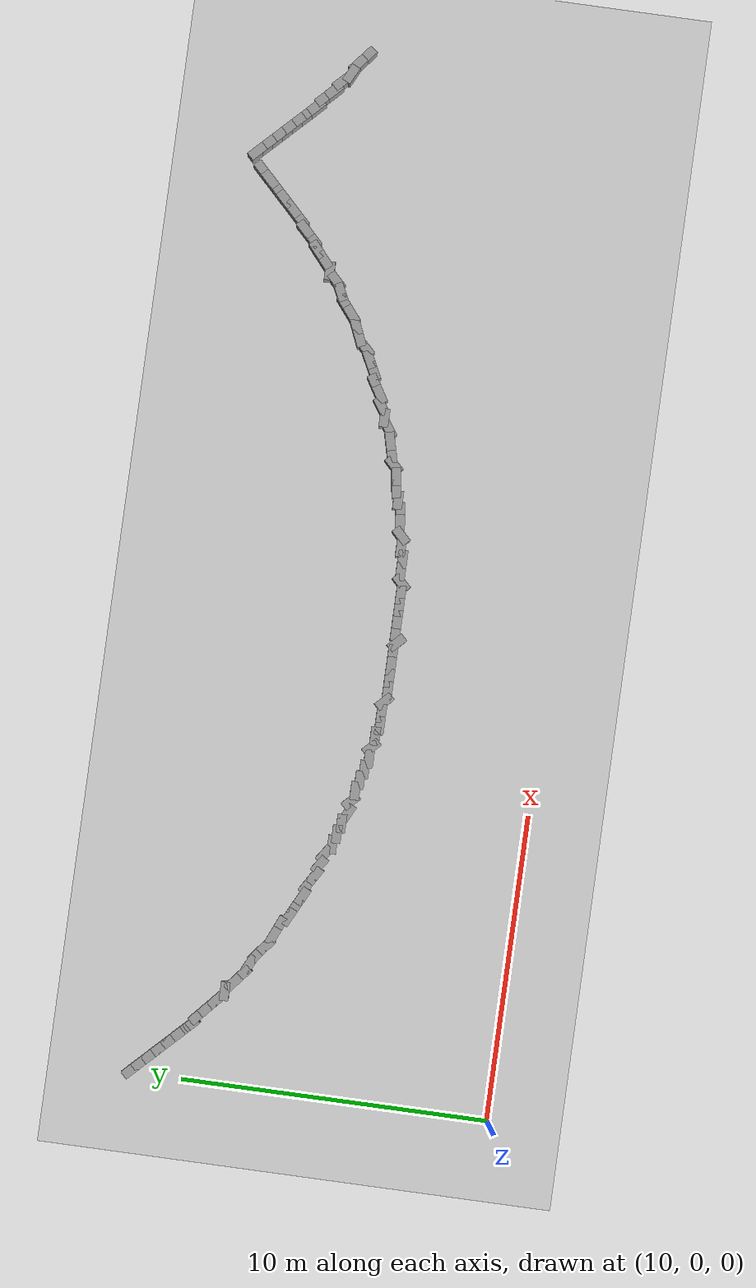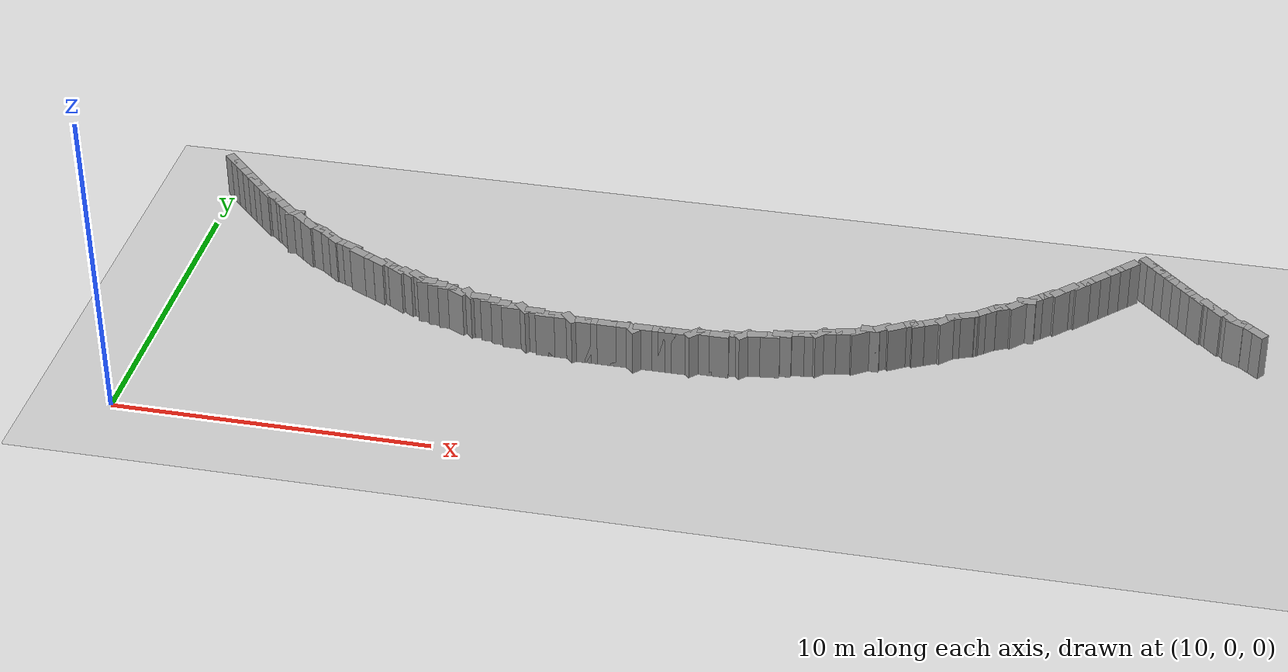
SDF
<sdf version="1.5">
 <world name="test_figure8">
  <include><uri>model://sun</uri></include>
  <include><uri>model://ground_plane</uri></include>
  <model name="curbL_49">
   <static>true</static>
   <pose>10.150 11.650 0.750 0 0 -0.785</pose>
   <link name="link">
    <collision name="collision"><geometry><box><size>0.600 0.300 1.500</size></box></geometry></collision>
    <visual name="visual">
     <geometry><box><size>0.600 0.300 1.500</size></box></geometry>
     <material><ambient>0.6 0.6 0.6 1</ambient><diffuse>0.6 0.6 0.6 1</diffuse></material>
    </visual>
   </link>
  </model>
  <model name="curbL_50">
   <static>true</static>
   <pose>10.433 11.367 0.750 0 0 -0.785</pose>
   <link name="link">
    <collision name="collision"><geometry><box><size>0.600 0.300 1.500</size></box></geometry></collision>
    <visual name="visual">
     <geometry><box><size>0.600 0.300 1.500</size></box></geometry>
     <material><ambient>0.6 0.6 0.6 1</ambient><diffuse>0.6 0.6 0.6 1</diffuse></material>
    </visual>
   </link>
  </model>
  <model name="curbL_51">
   <static>true</static>
   <pose>10.716 11.084 0.750 0 0 -0.785</pose>
   <link name="link">
    <collision name="collision"><geometry><box><size>0.600 0.300 1.500</size></box></geometry></collision>
    <visual name="visual">
     <geometry><box><size>0.600 0.300 1.500</size></box></geometry>
     <material><ambient>0.6 0.6 0.6 1</ambient><diffuse>0.6 0.6 0.6 1</diffuse></material>
    </visual>
   </link>
  </model>
  <model name="curbL_52">
   <static>true</static>
   <pose>10.999 10.801 0.750 0 0 -0.785</pose>
   <link name="link">
    <collision name="collision"><geometry><box><size>0.600 0.300 1.500</size></box></geometry></collision>
    <visual name="visual">
     <geometry><box><size>0.600 0.300 1.500</size></box></geometry>
     <material><ambient>0.6 0.6 0.6 1</ambient><diffuse>0.6 0.6 0.6 1</diffuse></material>
    </visual>
   </link>
  </model>
  <model name="curbL_53">
   <static>true</static>
   <pose>11.282 10.518 0.750 0 0 -0.785</pose>
   <link name="link">
    <collision name="collision"><geometry><box><size>0.600 0.300 1.500</size></box></geometry></collision>
    <visual name="visual">
     <geometry><box><size>0.600 0.300 1.500</size></box></geometry>
     <material><ambient>0.6 0.6 0.6 1</ambient><diffuse>0.6 0.6 0.6 1</diffuse></material>
    </visual>
   </link>
  </model>
  <model name="curbL_54">
   <static>true</static>
   <pose>11.564 10.236 0.750 0 0 -0.785</pose>
   <link name="link">
    <collision name="collision"><geometry><box><size>0.600 0.300 1.500</size></box></geometry></collision>
    <visual name="visual">
     <geometry><box><size>0.600 0.300 1.500</size></box></geometry>
     <material><ambient>0.6 0.6 0.6 1</ambient><diffuse>0.6 0.6 0.6 1</diffuse></material>
    </visual>
   </link>
  </model>
  <model name="curbL_55">
   <static>true</static>
   <pose>11.847 9.953 0.750 0 0 -0.785</pose>
   <link name="link">
    <collision name="collision"><geometry><box><size>0.600 0.300 1.500</size></box></geometry></collision>
    <visual name="visual">
     <geometry><box><size>0.600 0.300 1.500</size></box></geometry>
     <material><ambient>0.6 0.6 0.6 1</ambient><diffuse>0.6 0.6 0.6 1</diffuse></material>
    </visual>
   </link>
  </model>
  <model name="curbL_56">
   <static>true</static>
   <pose>12.168 9.749 0.750 0 0 -0.733</pose>
   <link name="link">
    <collision name="collision"><geometry><box><size>0.600 0.300 1.500</size></box></geometry></collision>
    <visual name="visual">
     <geometry><box><size>0.600 0.300 1.500</size></box></geometry>
     <material><ambient>0.6 0.6 0.6 1</ambient><diffuse>0.6 0.6 0.6 1</diffuse></material>
    </visual>
   </link>
  </model>
  <model name="curbL_57">
   <static>true</static>
   <pose>12.465 9.482 0.750 0 0 -0.733</pose>
   <link name="link">
    <collision name="collision"><geometry><box><size>0.600 0.300 1.500</size></box></geometry></collision>
    <visual name="visual">
     <geometry><box><size>0.600 0.300 1.500</size></box></geometry>
     <material><ambient>0.6 0.6 0.6 1</ambient><diffuse>0.6 0.6 0.6 1</diffuse></material>
    </visual>
   </link>
  </model>
  <model name="curbL_58">
   <static>true</static>
   <pose>12.762 9.214 0.750 0 0 -0.733</pose>
   <link name="link">
    <collision name="collision"><geometry><box><size>0.600 0.300 1.500</size></box></geometry></collision>
    <visual name="visual">
     <geometry><box><size>0.600 0.300 1.500</size></box></geometry>
     <material><ambient>0.6 0.6 0.6 1</ambient><diffuse>0.6 0.6 0.6 1</diffuse></material>
    </visual>
   </link>
  </model>
  <model name="curbL_59">
   <static>true</static>
   <pose>13.080 9.000 0.750 0 0 0.000</pose>
   <link name="link">
    <collision name="collision"><geometry><box><size>0.600 0.300 1.500</size></box></geometry></collision>
    <visual name="visual">
     <geometry><box><size>0.600 0.300 1.500</size></box></geometry>
     <material><ambient>0.6 0.6 0.6 1</ambient><diffuse>0.6 0.6 0.6 1</diffuse></material>
    </visual>
   </link>
  </model>
  <model name="curbL_60">
   <static>true</static>
   <pose>13.392 8.757 0.750 0 0 -0.695</pose>
   <link name="link">
    <collision name="collision"><geometry><box><size>0.600 0.300 1.500</size></box></geometry></collision>
    <visual name="visual">
     <geometry><box><size>0.600 0.300 1.500</size></box></geometry>
     <material><ambient>0.6 0.6 0.6 1</ambient><diffuse>0.6 0.6 0.6 1</diffuse></material>
    </visual>
   </link>
  </model>
  <model name="curbL_61">
   <static>true</static>
   <pose>13.699 8.501 0.750 0 0 -0.695</pose>
   <link name="link">
    <collision name="collision"><geometry><box><size>0.600 0.300 1.500</size></box></geometry></collision>
    <visual name="visual">
     <geometry><box><size>0.600 0.300 1.500</size></box></geometry>
     <material><ambient>0.6 0.6 0.6 1</ambient><diffuse>0.6 0.6 0.6 1</diffuse></material>
    </visual>
   </link>
  </model>
  <model name="curbL_62">
   <static>true</static>
   <pose>14.057 8.322 0.750 0 0 -0.464</pose>
   <link name="link">
    <collision name="collision"><geometry><box><size>0.600 0.300 1.500</size></box></geometry></collision>
    <visual name="visual">
     <geometry><box><size>0.600 0.300 1.500</size></box></geometry>
     <material><ambient>0.6 0.6 0.6 1</ambient><diffuse>0.6 0.6 0.6 1</diffuse></material>
    </visual>
   </link>
  </model>
  <model name="curbL_63">
   <static>true</static>
   <pose>14.400 8.120 0.750 0 0 -0.675</pose>
   <link name="link">
    <collision name="collision"><geometry><box><size>0.600 0.300 1.500</size></box></geometry></collision>
    <visual name="visual">
     <geometry><box><size>0.600 0.300 1.500</size></box></geometry>
     <material><ambient>0.6 0.6 0.6 1</ambient><diffuse>0.6 0.6 0.6 1</diffuse></material>
    </visual>
   </link>
  </model>
  <model name="curbL_64">
   <static>true</static>
   <pose>14.713 7.870 0.750 0 0 -0.675</pose>
   <link name="link">
    <collision name="collision"><geometry><box><size>0.600 0.300 1.500</size></box></geometry></collision>
    <visual name="visual">
     <geometry><box><size>0.600 0.300 1.500</size></box></geometry>
     <material><ambient>0.6 0.6 0.6 1</ambient><diffuse>0.6 0.6 0.6 1</diffuse></material>
    </visual>
   </link>
  </model>
  <model name="curbL_65">
   <static>true</static>
   <pose>15.065 7.687 0.750 0 0 -0.405</pose>
   <link name="link">
    <collision name="collision"><geometry><box><size>0.600 0.300 1.500</size></box></geometry></collision>
    <visual name="visual">
     <geometry><box><size>0.600 0.300 1.500</size></box></geometry>
     <material><ambient>0.6 0.6 0.6 1</ambient><diffuse>0.6 0.6 0.6 1</diffuse></material>
    </visual>
   </link>
  </model>
  <model name="curbL_66">
   <static>true</static>
   <pose>15.432 7.529 0.750 0 0 -0.405</pose>
   <link name="link">
    <collision name="collision"><geometry><box><size>0.600 0.300 1.500</size></box></geometry></collision>
    <visual name="visual">
     <geometry><box><size>0.600 0.300 1.500</size></box></geometry>
     <material><ambient>0.6 0.6 0.6 1</ambient><diffuse>0.6 0.6 0.6 1</diffuse></material>
    </visual>
   </link>
  </model>
  <model name="curbL_67">
   <static>true</static>
   <pose>15.739 7.281 0.750 0 0 -0.464</pose>
   <link name="link">
    <collision name="collision"><geometry><box><size>0.600 0.300 1.500</size></box></geometry></collision>
    <visual name="visual">
     <geometry><box><size>0.600 0.300 1.500</size></box></geometry>
     <material><ambient>0.6 0.6 0.6 1</ambient><diffuse>0.6 0.6 0.6 1</diffuse></material>
    </visual>
   </link>
  </model>
  <model name="curbL_68">
   <static>true</static>
   <pose>16.097 7.102 0.750 0 0 -0.464</pose>
   <link name="link">
    <collision name="collision"><geometry><box><size>0.600 0.300 1.500</size></box></geometry></collision>
    <visual name="visual">
     <geometry><box><size>0.600 0.300 1.500</size></box></geometry>
     <material><ambient>0.6 0.6 0.6 1</ambient><diffuse>0.6 0.6 0.6 1</diffuse></material>
    </visual>
   </link>
  </model>
  <model name="curbL_69">
   <static>true</static>
   <pose>16.455 6.923 0.750 0 0 -0.464</pose>
   <link name="link">
    <collision name="collision"><geometry><box><size>0.600 0.300 1.500</size></box></geometry></collision>
    <visual name="visual">
     <geometry><box><size>0.600 0.300 1.500</size></box></geometry>
     <material><ambient>0.6 0.6 0.6 1</ambient><diffuse>0.6 0.6 0.6 1</diffuse></material>
    </visual>
   </link>
  </model>
  <model name="curbL_70">
   <static>true</static>
   <pose>16.828 6.823 0.750 0 0 -0.540</pose>
   <link name="link">
    <collision name="collision"><geometry><box><size>0.600 0.300 1.500</size></box></geometry></collision>
    <visual name="visual">
     <geometry><box><size>0.600 0.300 1.500</size></box></geometry>
     <material><ambient>0.6 0.6 0.6 1</ambient><diffuse>0.6 0.6 0.6 1</diffuse></material>
    </visual>
   </link>
  </model>
  <model name="curbL_71">
   <static>true</static>
   <pose>17.171 6.617 0.750 0 0 -0.540</pose>
   <link name="link">
    <collision name="collision"><geometry><box><size>0.600 0.300 1.500</size></box></geometry></collision>
    <visual name="visual">
     <geometry><box><size>0.600 0.300 1.500</size></box></geometry>
     <material><ambient>0.6 0.6 0.6 1</ambient><diffuse>0.6 0.6 0.6 1</diffuse></material>
    </visual>
   </link>
  </model>
  <model name="curbL_72">
   <static>true</static>
   <pose>17.538 6.508 0.750 0 0 -0.588</pose>
   <link name="link">
    <collision name="collision"><geometry><box><size>0.600 0.300 1.500</size></box></geometry></collision>
    <visual name="visual">
     <geometry><box><size>0.600 0.300 1.500</size></box></geometry>
     <material><ambient>0.6 0.6 0.6 1</ambient><diffuse>0.6 0.6 0.6 1</diffuse></material>
    </visual>
   </link>
  </model>
  <model name="curbL_73">
   <static>true</static>
   <pose>17.905 6.397 0.750 0 0 -0.588</pose>
   <link name="link">
    <collision name="collision"><geometry><box><size>0.600 0.300 1.500</size></box></geometry></collision>
    <visual name="visual">
     <geometry><box><size>0.600 0.300 1.500</size></box></geometry>
     <material><ambient>0.6 0.6 0.6 1</ambient><diffuse>0.6 0.6 0.6 1</diffuse></material>
    </visual>
   </link>
  </model>
  <model name="curbL_74">
   <static>true</static>
   <pose>18.245 6.200 0.750 0 0 0.000</pose>
   <link name="link">
    <collision name="collision"><geometry><box><size>0.600 0.300 1.500</size></box></geometry></collision>
    <visual name="visual">
     <geometry><box><size>0.600 0.300 1.500</size></box></geometry>
     <material><ambient>0.6 0.6 0.6 1</ambient><diffuse>0.6 0.6 0.6 1</diffuse></material>
    </visual>
   </link>
  </model>
  <model name="curbL_75">
   <static>true</static>
   <pose>18.604 6.100 0.750 0 0 0.000</pose>
   <link name="link">
    <collision name="collision"><geometry><box><size>0.600 0.300 1.500</size></box></geometry></collision>
    <visual name="visual">
     <geometry><box><size>0.600 0.300 1.500</size></box></geometry>
     <material><ambient>0.6 0.6 0.6 1</ambient><diffuse>0.6 0.6 0.6 1</diffuse></material>
    </visual>
   </link>
  </model>
  <model name="curbL_76">
   <static>true</static>
   <pose>18.962 6.000 0.750 0 0 0.000</pose>
   <link name="link">
    <collision name="collision"><geometry><box><size>0.600 0.300 1.500</size></box></geometry></collision>
    <visual name="visual">
     <geometry><box><size>0.600 0.300 1.500</size></box></geometry>
     <material><ambient>0.6 0.6 0.6 1</ambient><diffuse>0.6 0.6 0.6 1</diffuse></material>
    </visual>
   </link>
  </model>
  <model name="curbL_77">
   <static>true</static>
   <pose>19.324 5.838 0.750 0 0 -0.464</pose>
   <link name="link">
    <collision name="collision"><geometry><box><size>0.600 0.300 1.500</size></box></geometry></collision>
    <visual name="visual">
     <geometry><box><size>0.600 0.300 1.500</size></box></geometry>
     <material><ambient>0.6 0.6 0.6 1</ambient><diffuse>0.6 0.6 0.6 1</diffuse></material>
    </visual>
   </link>
  </model>
  <model name="curbL_78">
   <static>true</static>
   <pose>19.711 5.789 0.750 0 0 -0.785</pose>
   <link name="link">
    <collision name="collision"><geometry><box><size>0.600 0.300 1.500</size></box></geometry></collision>
    <visual name="visual">
     <geometry><box><size>0.600 0.300 1.500</size></box></geometry>
     <material><ambient>0.6 0.6 0.6 1</ambient><diffuse>0.6 0.6 0.6 1</diffuse></material>
    </visual>
   </link>
  </model>
  <model name="curbL_79">
   <static>true</static>
   <pose>20.073 5.700 0.750 0 0 0.000</pose>
   <link name="link">
    <collision name="collision"><geometry><box><size>0.600 0.300 1.500</size></box></geometry></collision>
    <visual name="visual">
     <geometry><box><size>0.600 0.300 1.500</size></box></geometry>
     <material><ambient>0.6 0.6 0.6 1</ambient><diffuse>0.6 0.6 0.6 1</diffuse></material>
    </visual>
   </link>
  </model>
  <model name="curbL_80">
   <static>true</static>
   <pose>20.432 5.600 0.750 0 0 0.000</pose>
   <link name="link">
    <collision name="collision"><geometry><box><size>0.600 0.300 1.500</size></box></geometry></collision>
    <visual name="visual">
     <geometry><box><size>0.600 0.300 1.500</size></box></geometry>
     <material><ambient>0.6 0.6 0.6 1</ambient><diffuse>0.6 0.6 0.6 1</diffuse></material>
    </visual>
   </link>
  </model>
  <model name="curbL_81">
   <static>true</static>
   <pose>20.791 5.500 0.750 0 0 0.000</pose>
   <link name="link">
    <collision name="collision"><geometry><box><size>0.600 0.300 1.500</size></box></geometry></collision>
    <visual name="visual">
     <geometry><box><size>0.600 0.300 1.500</size></box></geometry>
     <material><ambient>0.6 0.6 0.6 1</ambient><diffuse>0.6 0.6 0.6 1</diffuse></material>
    </visual>
   </link>
  </model>
  <model name="curbL_82">
   <static>true</static>
   <pose>21.149 5.400 0.750 0 0 0.000</pose>
   <link name="link">
    <collision name="collision"><geometry><box><size>0.600 0.300 1.500</size></box></geometry></collision>
    <visual name="visual">
     <geometry><box><size>0.600 0.300 1.500</size></box></geometry>
     <material><ambient>0.6 0.6 0.6 1</ambient><diffuse>0.6 0.6 0.6 1</diffuse></material>
    </visual>
   </link>
  </model>
  <model name="curbL_83">
   <static>true</static>
   <pose>21.535 5.365 0.750 0 0 -0.785</pose>
   <link name="link">
    <collision name="collision"><geometry><box><size>0.600 0.300 1.500</size></box></geometry></collision>
    <visual name="visual">
     <geometry><box><size>0.600 0.300 1.500</size></box></geometry>
     <material><ambient>0.6 0.6 0.6 1</ambient><diffuse>0.6 0.6 0.6 1</diffuse></material>
    </visual>
   </link>
  </model>
  <model name="curbL_84">
   <static>true</static>
   <pose>21.908 5.300 0.750 0 0 0.000</pose>
   <link name="link">
    <collision name="collision"><geometry><box><size>0.600 0.300 1.500</size></box></geometry></collision>
    <visual name="visual">
     <geometry><box><size>0.600 0.300 1.500</size></box></geometry>
     <material><ambient>0.6 0.6 0.6 1</ambient><diffuse>0.6 0.6 0.6 1</diffuse></material>
    </visual>
   </link>
  </model>
  <model name="curbL_85">
   <static>true</static>
   <pose>22.266 5.200 0.750 0 0 0.000</pose>
   <link name="link">
    <collision name="collision"><geometry><box><size>0.600 0.300 1.500</size></box></geometry></collision>
    <visual name="visual">
     <geometry><box><size>0.600 0.300 1.500</size></box></geometry>
     <material><ambient>0.6 0.6 0.6 1</ambient><diffuse>0.6 0.6 0.6 1</diffuse></material>
    </visual>
   </link>
  </model>
  <model name="curbL_86">
   <static>true</static>
   <pose>22.666 5.200 0.750 0 0 0.000</pose>
   <link name="link">
    <collision name="collision"><geometry><box><size>0.600 0.300 1.500</size></box></geometry></collision>
    <visual name="visual">
     <geometry><box><size>0.600 0.300 1.500</size></box></geometry>
     <material><ambient>0.6 0.6 0.6 1</ambient><diffuse>0.6 0.6 0.6 1</diffuse></material>
    </visual>
   </link>
  </model>
  <model name="curbL_87">
   <static>true</static>
   <pose>23.047 5.153 0.750 0 0 -0.785</pose>
   <link name="link">
    <collision name="collision"><geometry><box><size>0.600 0.300 1.500</size></box></geometry></collision>
    <visual name="visual">
     <geometry><box><size>0.600 0.300 1.500</size></box></geometry>
     <material><ambient>0.6 0.6 0.6 1</ambient><diffuse>0.6 0.6 0.6 1</diffuse></material>
    </visual>
   </link>
  </model>
  <model name="curbL_88">
   <static>true</static>
   <pose>23.425 5.100 0.750 0 0 0.000</pose>
   <link name="link">
    <collision name="collision"><geometry><box><size>0.600 0.300 1.500</size></box></geometry></collision>
    <visual name="visual">
     <geometry><box><size>0.600 0.300 1.500</size></box></geometry>
     <material><ambient>0.6 0.6 0.6 1</ambient><diffuse>0.6 0.6 0.6 1</diffuse></material>
    </visual>
   </link>
  </model>
  <model name="curbL_89">
   <static>true</static>
   <pose>23.825 5.100 0.750 0 0 0.000</pose>
   <link name="link">
    <collision name="collision"><geometry><box><size>0.600 0.300 1.500</size></box></geometry></collision>
    <visual name="visual">
     <geometry><box><size>0.600 0.300 1.500</size></box></geometry>
     <material><ambient>0.6 0.6 0.6 1</ambient><diffuse>0.6 0.6 0.6 1</diffuse></material>
    </visual>
   </link>
  </model>
  <model name="curbL_90">
   <static>true</static>
   <pose>24.225 5.100 0.750 0 0 0.000</pose>
   <link name="link">
    <collision name="collision"><geometry><box><size>0.600 0.300 1.500</size></box></geometry></collision>
    <visual name="visual">
     <geometry><box><size>0.600 0.300 1.500</size></box></geometry>
     <material><ambient>0.6 0.6 0.6 1</ambient><diffuse>0.6 0.6 0.6 1</diffuse></material>
    </visual>
   </link>
  </model>
  <model name="curbL_91">
   <static>true</static>
   <pose>24.625 5.100 0.750 0 0 0.000</pose>
   <link name="link">
    <collision name="collision"><geometry><box><size>0.600 0.300 1.500</size></box></geometry></collision>
    <visual name="visual">
     <geometry><box><size>0.600 0.300 1.500</size></box></geometry>
     <material><ambient>0.6 0.6 0.6 1</ambient><diffuse>0.6 0.6 0.6 1</diffuse></material>
    </visual>
   </link>
  </model>
  <model name="curbL_92">
   <static>true</static>
   <pose>24.988 5.012 0.750 0 0 -0.785</pose>
   <link name="link">
    <collision name="collision"><geometry><box><size>0.600 0.300 1.500</size></box></geometry></collision>
    <visual name="visual">
     <geometry><box><size>0.600 0.300 1.500</size></box></geometry>
     <material><ambient>0.6 0.6 0.6 1</ambient><diffuse>0.6 0.6 0.6 1</diffuse></material>
    </visual>
   </link>
  </model>
  <model name="curbL_93">
   <static>true</static>
   <pose>25.342 5.100 0.750 0 0 0.000</pose>
   <link name="link">
    <collision name="collision"><geometry><box><size>0.600 0.300 1.500</size></box></geometry></collision>
    <visual name="visual">
     <geometry><box><size>0.600 0.300 1.500</size></box></geometry>
     <material><ambient>0.6 0.6 0.6 1</ambient><diffuse>0.6 0.6 0.6 1</diffuse></material>
    </visual>
   </link>
  </model>
  <model name="curbL_94">
   <static>true</static>
   <pose>25.742 5.100 0.750 0 0 0.000</pose>
   <link name="link">
    <collision name="collision"><geometry><box><size>0.600 0.300 1.500</size></box></geometry></collision>
    <visual name="visual">
     <geometry><box><size>0.600 0.300 1.500</size></box></geometry>
     <material><ambient>0.6 0.6 0.6 1</ambient><diffuse>0.6 0.6 0.6 1</diffuse></material>
    </visual>
   </link>
  </model>
  <model name="curbL_95">
   <static>true</static>
   <pose>26.142 5.100 0.750 0 0 0.000</pose>
   <link name="link">
    <collision name="collision"><geometry><box><size>0.600 0.300 1.500</size></box></geometry></collision>
    <visual name="visual">
     <geometry><box><size>0.600 0.300 1.500</size></box></geometry>
     <material><ambient>0.6 0.6 0.6 1</ambient><diffuse>0.6 0.6 0.6 1</diffuse></material>
    </visual>
   </link>
  </model>
  <model name="curbL_96">
   <static>true</static>
   <pose>26.542 5.100 0.750 0 0 0.000</pose>
   <link name="link">
    <collision name="collision"><geometry><box><size>0.600 0.300 1.500</size></box></geometry></collision>
    <visual name="visual">
     <geometry><box><size>0.600 0.300 1.500</size></box></geometry>
     <material><ambient>0.6 0.6 0.6 1</ambient><diffuse>0.6 0.6 0.6 1</diffuse></material>
    </visual>
   </link>
  </model>
  <model name="curbL_97">
   <static>true</static>
   <pose>26.930 5.130 0.750 0 0 0.785</pose>
   <link name="link">
    <collision name="collision"><geometry><box><size>0.600 0.300 1.500</size></box></geometry></collision>
    <visual name="visual">
     <geometry><box><size>0.600 0.300 1.500</size></box></geometry>
     <material><ambient>0.6 0.6 0.6 1</ambient><diffuse>0.6 0.6 0.6 1</diffuse></material>
    </visual>
   </link>
  </model>
  <model name="curbL_98">
   <static>true</static>
   <pose>27.301 5.200 0.750 0 0 0.000</pose>
   <link name="link">
    <collision name="collision"><geometry><box><size>0.600 0.300 1.500</size></box></geometry></collision>
    <visual name="visual">
     <geometry><box><size>0.600 0.300 1.500</size></box></geometry>
     <material><ambient>0.6 0.6 0.6 1</ambient><diffuse>0.6 0.6 0.6 1</diffuse></material>
    </visual>
   </link>
  </model>
  <model name="curbL_99">
   <static>true</static>
   <pose>27.701 5.200 0.750 0 0 0.000</pose>
   <link name="link">
    <collision name="collision"><geometry><box><size>0.600 0.300 1.500</size></box></geometry></collision>
    <visual name="visual">
     <geometry><box><size>0.600 0.300 1.500</size></box></geometry>
     <material><ambient>0.6 0.6 0.6 1</ambient><diffuse>0.6 0.6 0.6 1</diffuse></material>
    </visual>
   </link>
  </model>
  <model name="curbL_100">
   <static>true</static>
   <pose>28.059 5.300 0.750 0 0 0.000</pose>
   <link name="link">
    <collision name="collision"><geometry><box><size>0.600 0.300 1.500</size></box></geometry></collision>
    <visual name="visual">
     <geometry><box><size>0.600 0.300 1.500</size></box></geometry>
     <material><ambient>0.6 0.6 0.6 1</ambient><diffuse>0.6 0.6 0.6 1</diffuse></material>
    </visual>
   </link>
  </model>
  <model name="curbL_101">
   <static>true</static>
   <pose>28.442 5.342 0.750 0 0 0.785</pose>
   <link name="link">
    <collision name="collision"><geometry><box><size>0.600 0.300 1.500</size></box></geometry></collision>
    <visual name="visual">
     <geometry><box><size>0.600 0.300 1.500</size></box></geometry>
     <material><ambient>0.6 0.6 0.6 1</ambient><diffuse>0.6 0.6 0.6 1</diffuse></material>
    </visual>
   </link>
  </model>
  <model name="curbL_102">
   <static>true</static>
   <pose>28.816 5.435 0.750 0 0 0.111</pose>
   <link name="link">
    <collision name="collision"><geometry><box><size>0.600 0.300 1.500</size></box></geometry></collision>
    <visual name="visual">
     <geometry><box><size>0.600 0.300 1.500</size></box></geometry>
     <material><ambient>0.6 0.6 0.6 1</ambient><diffuse>0.6 0.6 0.6 1</diffuse></material>
    </visual>
   </link>
  </model>
  <model name="curbL_103">
   <static>true</static>
   <pose>29.213 5.479 0.750 0 0 0.111</pose>
   <link name="link">
    <collision name="collision"><geometry><box><size>0.600 0.300 1.500</size></box></geometry></collision>
    <visual name="visual">
     <geometry><box><size>0.600 0.300 1.500</size></box></geometry>
     <material><ambient>0.6 0.6 0.6 1</ambient><diffuse>0.6 0.6 0.6 1</diffuse></material>
    </visual>
   </link>
  </model>
  <model name="curbL_104">
   <static>true</static>
   <pose>29.571 5.600 0.750 0 0 0.000</pose>
   <link name="link">
    <collision name="collision"><geometry><box><size>0.600 0.300 1.500</size></box></geometry></collision>
    <visual name="visual">
     <geometry><box><size>0.600 0.300 1.500</size></box></geometry>
     <material><ambient>0.6 0.6 0.6 1</ambient><diffuse>0.6 0.6 0.6 1</diffuse></material>
    </visual>
   </link>
  </model>
  <model name="curbL_105">
   <static>true</static>
   <pose>29.929 5.704 0.750 0 0 0.142</pose>
   <link name="link">
    <collision name="collision"><geometry><box><size>0.600 0.300 1.500</size></box></geometry></collision>
    <visual name="visual">
     <geometry><box><size>0.600 0.300 1.500</size></box></geometry>
     <material><ambient>0.6 0.6 0.6 1</ambient><diffuse>0.6 0.6 0.6 1</diffuse></material>
    </visual>
   </link>
  </model>
  <model name="curbL_106">
   <static>true</static>
   <pose>30.325 5.761 0.750 0 0 0.142</pose>
   <link name="link">
    <collision name="collision"><geometry><box><size>0.600 0.300 1.500</size></box></geometry></collision>
    <visual name="visual">
     <geometry><box><size>0.600 0.300 1.500</size></box></geometry>
     <material><ambient>0.6 0.6 0.6 1</ambient><diffuse>0.6 0.6 0.6 1</diffuse></material>
    </visual>
   </link>
  </model>
  <model name="curbL_107">
   <static>true</static>
   <pose>30.687 5.887 0.750 0 0 0.785</pose>
   <link name="link">
    <collision name="collision"><geometry><box><size>0.600 0.300 1.500</size></box></geometry></collision>
    <visual name="visual">
     <geometry><box><size>0.600 0.300 1.500</size></box></geometry>
     <material><ambient>0.6 0.6 0.6 1</ambient><diffuse>0.6 0.6 0.6 1</diffuse></material>
    </visual>
   </link>
  </model>
  <model name="curbL_108">
   <static>true</static>
   <pose>31.038 6.010 0.750 0 0 0.245</pose>
   <link name="link">
    <collision name="collision"><geometry><box><size>0.600 0.300 1.500</size></box></geometry></collision>
    <visual name="visual">
     <geometry><box><size>0.600 0.300 1.500</size></box></geometry>
     <material><ambient>0.6 0.6 0.6 1</ambient><diffuse>0.6 0.6 0.6 1</diffuse></material>
    </visual>
   </link>
  </model>
  <model name="curbL_109">
   <static>true</static>
   <pose>31.426 6.107 0.750 0 0 0.245</pose>
   <link name="link">
    <collision name="collision"><geometry><box><size>0.600 0.300 1.500</size></box></geometry></collision>
    <visual name="visual">
     <geometry><box><size>0.600 0.300 1.500</size></box></geometry>
     <material><ambient>0.6 0.6 0.6 1</ambient><diffuse>0.6 0.6 0.6 1</diffuse></material>
    </visual>
   </link>
  </model>
  <model name="curbL_110">
   <static>true</static>
   <pose>31.812 6.208 0.750 0 0 0.588</pose>
   <link name="link">
    <collision name="collision"><geometry><box><size>0.600 0.300 1.500</size></box></geometry></collision>
    <visual name="visual">
     <geometry><box><size>0.600 0.300 1.500</size></box></geometry>
     <material><ambient>0.6 0.6 0.6 1</ambient><diffuse>0.6 0.6 0.6 1</diffuse></material>
    </visual>
   </link>
  </model>
  <model name="curbL_111">
   <static>true</static>
   <pose>32.154 6.400 0.750 0 0 0.000</pose>
   <link name="link">
    <collision name="collision"><geometry><box><size>0.600 0.300 1.500</size></box></geometry></collision>
    <visual name="visual">
     <geometry><box><size>0.600 0.300 1.500</size></box></geometry>
     <material><ambient>0.6 0.6 0.6 1</ambient><diffuse>0.6 0.6 0.6 1</diffuse></material>
    </visual>
   </link>
  </model>
  <model name="curbL_112">
   <static>true</static>
   <pose>32.512 6.541 0.750 0 0 0.588</pose>
   <link name="link">
    <collision name="collision"><geometry><box><size>0.600 0.300 1.500</size></box></geometry></collision>
    <visual name="visual">
     <geometry><box><size>0.600 0.300 1.500</size></box></geometry>
     <material><ambient>0.6 0.6 0.6 1</ambient><diffuse>0.6 0.6 0.6 1</diffuse></material>
    </visual>
   </link>
  </model>
  <model name="curbL_113">
   <static>true</static>
   <pose>32.880 6.648 0.750 0 0 0.540</pose>
   <link name="link">
    <collision name="collision"><geometry><box><size>0.600 0.300 1.500</size></box></geometry></collision>
    <visual name="visual">
     <geometry><box><size>0.600 0.300 1.500</size></box></geometry>
     <material><ambient>0.6 0.6 0.6 1</ambient><diffuse>0.6 0.6 0.6 1</diffuse></material>
    </visual>
   </link>
  </model>
  <model name="curbL_114">
   <static>true</static>
   <pose>33.223 6.854 0.750 0 0 0.540</pose>
   <link name="link">
    <collision name="collision"><geometry><box><size>0.600 0.300 1.500</size></box></geometry></collision>
    <visual name="visual">
     <geometry><box><size>0.600 0.300 1.500</size></box></geometry>
     <material><ambient>0.6 0.6 0.6 1</ambient><diffuse>0.6 0.6 0.6 1</diffuse></material>
    </visual>
   </link>
  </model>
  <model name="curbL_115">
   <static>true</static>
   <pose>33.599 6.949 0.750 0 0 0.464</pose>
   <link name="link">
    <collision name="collision"><geometry><box><size>0.600 0.300 1.500</size></box></geometry></collision>
    <visual name="visual">
     <geometry><box><size>0.600 0.300 1.500</size></box></geometry>
     <material><ambient>0.6 0.6 0.6 1</ambient><diffuse>0.6 0.6 0.6 1</diffuse></material>
    </visual>
   </link>
  </model>
  <model name="curbL_116">
   <static>true</static>
   <pose>33.957 7.128 0.750 0 0 0.464</pose>
   <link name="link">
    <collision name="collision"><geometry><box><size>0.600 0.300 1.500</size></box></geometry></collision>
    <visual name="visual">
     <geometry><box><size>0.600 0.300 1.500</size></box></geometry>
     <material><ambient>0.6 0.6 0.6 1</ambient><diffuse>0.6 0.6 0.6 1</diffuse></material>
    </visual>
   </link>
  </model>
  <model name="curbL_117">
   <static>true</static>
   <pose>34.311 7.311 0.750 0 0 0.785</pose>
   <link name="link">
    <collision name="collision"><geometry><box><size>0.600 0.300 1.500</size></box></geometry></collision>
    <visual name="visual">
     <geometry><box><size>0.600 0.300 1.500</size></box></geometry>
     <material><ambient>0.6 0.6 0.6 1</ambient><diffuse>0.6 0.6 0.6 1</diffuse></material>
    </visual>
   </link>
  </model>
  <model name="curbL_118">
   <static>true</static>
   <pose>34.623 7.553 0.750 0 0 0.405</pose>
   <link name="link">
    <collision name="collision"><geometry><box><size>0.600 0.300 1.500</size></box></geometry></collision>
    <visual name="visual">
     <geometry><box><size>0.600 0.300 1.500</size></box></geometry>
     <material><ambient>0.6 0.6 0.6 1</ambient><diffuse>0.6 0.6 0.6 1</diffuse></material>
    </visual>
   </link>
  </model>
  <model name="curbL_119">
   <static>true</static>
   <pose>34.990 7.710 0.750 0 0 0.405</pose>
   <link name="link">
    <collision name="collision"><geometry><box><size>0.600 0.300 1.500</size></box></geometry></collision>
    <visual name="visual">
     <geometry><box><size>0.600 0.300 1.500</size></box></geometry>
     <material><ambient>0.6 0.6 0.6 1</ambient><diffuse>0.6 0.6 0.6 1</diffuse></material>
    </visual>
   </link>
  </model>
  <model name="curbL_120">
   <static>true</static>
   <pose>35.334 7.907 0.750 0 0 0.675</pose>
   <link name="link">
    <collision name="collision"><geometry><box><size>0.600 0.300 1.500</size></box></geometry></collision>
    <visual name="visual">
     <geometry><box><size>0.600 0.300 1.500</size></box></geometry>
     <material><ambient>0.6 0.6 0.6 1</ambient><diffuse>0.6 0.6 0.6 1</diffuse></material>
    </visual>
   </link>
  </model>
  <model name="curbL_121">
   <static>true</static>
   <pose>35.647 8.157 0.750 0 0 0.675</pose>
   <link name="link">
    <collision name="collision"><geometry><box><size>0.600 0.300 1.500</size></box></geometry></collision>
    <visual name="visual">
     <geometry><box><size>0.600 0.300 1.500</size></box></geometry>
     <material><ambient>0.6 0.6 0.6 1</ambient><diffuse>0.6 0.6 0.6 1</diffuse></material>
    </visual>
   </link>
  </model>
  <model name="curbL_122">
   <static>true</static>
   <pose>35.997 8.348 0.750 0 0 0.464</pose>
   <link name="link">
    <collision name="collision"><geometry><box><size>0.600 0.300 1.500</size></box></geometry></collision>
    <visual name="visual">
     <geometry><box><size>0.600 0.300 1.500</size></box></geometry>
     <material><ambient>0.6 0.6 0.6 1</ambient><diffuse>0.6 0.6 0.6 1</diffuse></material>
    </visual>
   </link>
  </model>
  <model name="curbL_123">
   <static>true</static>
   <pose>36.343 8.543 0.750 0 0 0.785</pose>
   <link name="link">
    <collision name="collision"><geometry><box><size>0.600 0.300 1.500</size></box></geometry></collision>
    <visual name="visual">
     <geometry><box><size>0.600 0.300 1.500</size></box></geometry>
     <material><ambient>0.6 0.6 0.6 1</ambient><diffuse>0.6 0.6 0.6 1</diffuse></material>
    </visual>
   </link>
  </model>
  <model name="curbL_124">
   <static>true</static>
   <pose>36.636 8.800 0.750 0 0 0.000</pose>
   <link name="link">
    <collision name="collision"><geometry><box><size>0.600 0.300 1.500</size></box></geometry></collision>
    <visual name="visual">
     <geometry><box><size>0.600 0.300 1.500</size></box></geometry>
     <material><ambient>0.6 0.6 0.6 1</ambient><diffuse>0.6 0.6 0.6 1</diffuse></material>
    </visual>
   </link>
  </model>
  <model name="curbL_125">
   <static>true</static>
   <pose>36.955 9.019 0.750 0 0 0.709</pose>
   <link name="link">
    <collision name="collision"><geometry><box><size>0.600 0.300 1.500</size></box></geometry></collision>
    <visual name="visual">
     <geometry><box><size>0.600 0.300 1.500</size></box></geometry>
     <material><ambient>0.6 0.6 0.6 1</ambient><diffuse>0.6 0.6 0.6 1</diffuse></material>
    </visual>
   </link>
  </model>
  <model name="curbL_126">
   <static>true</static>
   <pose>37.259 9.279 0.750 0 0 0.709</pose>
   <link name="link">
    <collision name="collision"><geometry><box><size>0.600 0.300 1.500</size></box></geometry></collision>
    <visual name="visual">
     <geometry><box><size>0.600 0.300 1.500</size></box></geometry>
     <material><ambient>0.6 0.6 0.6 1</ambient><diffuse>0.6 0.6 0.6 1</diffuse></material>
    </visual>
   </link>
  </model>
  <model name="curbL_127">
   <static>true</static>
   <pose>37.581 9.481 0.750 0 0 0.785</pose>
   <link name="link">
    <collision name="collision"><geometry><box><size>0.600 0.300 1.500</size></box></geometry></collision>
    <visual name="visual">
     <geometry><box><size>0.600 0.300 1.500</size></box></geometry>
     <material><ambient>0.6 0.6 0.6 1</ambient><diffuse>0.6 0.6 0.6 1</diffuse></material>
    </visual>
   </link>
  </model>
  <model name="curbL_128">
   <static>true</static>
   <pose>37.864 9.764 0.750 0 0 0.785</pose>
   <link name="link">
    <collision name="collision"><geometry><box><size>0.600 0.300 1.500</size></box></geometry></collision>
    <visual name="visual">
     <geometry><box><size>0.600 0.300 1.500</size></box></geometry>
     <material><ambient>0.6 0.6 0.6 1</ambient><diffuse>0.6 0.6 0.6 1</diffuse></material>
    </visual>
   </link>
  </model>
  <model name="curbL_129">
   <static>true</static>
   <pose>38.176 9.976 0.750 0 0 0.785</pose>
   <link name="link">
    <collision name="collision"><geometry><box><size>0.600 0.300 1.500</size></box></geometry></collision>
    <visual name="visual">
     <geometry><box><size>0.600 0.300 1.500</size></box></geometry>
     <material><ambient>0.6 0.6 0.6 1</ambient><diffuse>0.6 0.6 0.6 1</diffuse></material>
    </visual>
   </link>
  </model>
  <model name="curbL_130">
   <static>true</static>
   <pose>38.459 10.259 0.750 0 0 0.785</pose>
   <link name="link">
    <collision name="collision"><geometry><box><size>0.600 0.300 1.500</size></box></geometry></collision>
    <visual name="visual">
     <geometry><box><size>0.600 0.300 1.500</size></box></geometry>
     <material><ambient>0.6 0.6 0.6 1</ambient><diffuse>0.6 0.6 0.6 1</diffuse></material>
    </visual>
   </link>
  </model>
  <model name="curbL_131">
   <static>true</static>
   <pose>38.742 10.542 0.750 0 0 0.785</pose>
   <link name="link">
    <collision name="collision"><geometry><box><size>0.600 0.300 1.500</size></box></geometry></collision>
    <visual name="visual">
     <geometry><box><size>0.600 0.300 1.500</size></box></geometry>
     <material><ambient>0.6 0.6 0.6 1</ambient><diffuse>0.6 0.6 0.6 1</diffuse></material>
    </visual>
   </link>
  </model>
  <model name="curbL_132">
   <static>true</static>
   <pose>39.024 10.824 0.750 0 0 0.785</pose>
   <link name="link">
    <collision name="collision"><geometry><box><size>0.600 0.300 1.500</size></box></geometry></collision>
    <visual name="visual">
     <geometry><box><size>0.600 0.300 1.500</size></box></geometry>
     <material><ambient>0.6 0.6 0.6 1</ambient><diffuse>0.6 0.6 0.6 1</diffuse></material>
    </visual>
   </link>
  </model>
  <model name="curbL_133">
   <static>true</static>
   <pose>39.307 11.107 0.750 0 0 0.785</pose>
   <link name="link">
    <collision name="collision"><geometry><box><size>0.600 0.300 1.500</size></box></geometry></collision>
    <visual name="visual">
     <geometry><box><size>0.600 0.300 1.500</size></box></geometry>
     <material><ambient>0.6 0.6 0.6 1</ambient><diffuse>0.6 0.6 0.6 1</diffuse></material>
    </visual>
   </link>
  </model>
  <model name="curbL_134">
   <static>true</static>
   <pose>39.590 11.390 0.750 0 0 0.785</pose>
   <link name="link">
    <collision name="collision"><geometry><box><size>0.600 0.300 1.500</size></box></geometry></collision>
    <visual name="visual">
     <geometry><box><size>0.600 0.300 1.500</size></box></geometry>
     <material><ambient>0.6 0.6 0.6 1</ambient><diffuse>0.6 0.6 0.6 1</diffuse></material>
    </visual>
   </link>
  </model>
  <model name="curbL_136">
   <static>true</static>
   <pose>40.156 11.644 0.750 0 0 -0.785</pose>
   <link name="link">
    <collision name="collision"><geometry><box><size>0.600 0.300 1.500</size></box></geometry></collision>
    <visual name="visual">
     <geometry><box><size>0.600 0.300 1.500</size></box></geometry>
     <material><ambient>0.6 0.6 0.6 1</ambient><diffuse>0.6 0.6 0.6 1</diffuse></material>
    </visual>
   </link>
  </model>
  <model name="curbL_137">
   <static>true</static>
   <pose>40.439 11.361 0.750 0 0 -0.785</pose>
   <link name="link">
    <collision name="collision"><geometry><box><size>0.600 0.300 1.500</size></box></geometry></collision>
    <visual name="visual">
     <geometry><box><size>0.600 0.300 1.500</size></box></geometry>
     <material><ambient>0.6 0.6 0.6 1</ambient><diffuse>0.6 0.6 0.6 1</diffuse></material>
    </visual>
   </link>
  </model>
  <model name="curbL_138">
   <static>true</static>
   <pose>40.722 11.078 0.750 0 0 -0.785</pose>
   <link name="link">
    <collision name="collision"><geometry><box><size>0.600 0.300 1.500</size></box></geometry></collision>
    <visual name="visual">
     <geometry><box><size>0.600 0.300 1.500</size></box></geometry>
     <material><ambient>0.6 0.6 0.6 1</ambient><diffuse>0.6 0.6 0.6 1</diffuse></material>
    </visual>
   </link>
  </model>
  <model name="curbL_139">
   <static>true</static>
   <pose>41.004 10.796 0.750 0 0 -0.785</pose>
   <link name="link">
    <collision name="collision"><geometry><box><size>0.600 0.300 1.500</size></box></geometry></collision>
    <visual name="visual">
     <geometry><box><size>0.600 0.300 1.500</size></box></geometry>
     <material><ambient>0.6 0.6 0.6 1</ambient><diffuse>0.6 0.6 0.6 1</diffuse></material>
    </visual>
   </link>
  </model>
  <model name="curbL_140">
   <static>true</static>
   <pose>41.287 10.513 0.750 0 0 -0.785</pose>
   <link name="link">
    <collision name="collision"><geometry><box><size>0.600 0.300 1.500</size></box></geometry></collision>
    <visual name="visual">
     <geometry><box><size>0.600 0.300 1.500</size></box></geometry>
     <material><ambient>0.6 0.6 0.6 1</ambient><diffuse>0.6 0.6 0.6 1</diffuse></material>
    </visual>
   </link>
  </model>
  <model name="curbL_141">
   <static>true</static>
   <pose>41.570 10.230 0.750 0 0 -0.785</pose>
   <link name="link">
    <collision name="collision"><geometry><box><size>0.600 0.300 1.500</size></box></geometry></collision>
    <visual name="visual">
     <geometry><box><size>0.600 0.300 1.500</size></box></geometry>
     <material><ambient>0.6 0.6 0.6 1</ambient><diffuse>0.6 0.6 0.6 1</diffuse></material>
    </visual>
   </link>
  </model>
  <model name="curbL_142">
   <static>true</static>
   <pose>41.853 9.947 0.750 0 0 -0.785</pose>
   <link name="link">
    <collision name="collision"><geometry><box><size>0.600 0.300 1.500</size></box></geometry></collision>
    <visual name="visual">
     <geometry><box><size>0.600 0.300 1.500</size></box></geometry>
     <material><ambient>0.6 0.6 0.6 1</ambient><diffuse>0.6 0.6 0.6 1</diffuse></material>
    </visual>
   </link>
  </model>
  <model name="curbL_143">
   <static>true</static>
   <pose>42.165 9.735 0.750 0 0 -0.785</pose>
   <link name="link">
    <collision name="collision"><geometry><box><size>0.600 0.300 1.500</size></box></geometry></collision>
    <visual name="visual">
     <geometry><box><size>0.600 0.300 1.500</size></box></geometry>
     <material><ambient>0.6 0.6 0.6 1</ambient><diffuse>0.6 0.6 0.6 1</diffuse></material>
    </visual>
   </link>
  </model>
  <model name="curbL_144">
   <static>true</static>
   <pose>42.448 9.452 0.750 0 0 -0.785</pose>
   <link name="link">
    <collision name="collision"><geometry><box><size>0.600 0.300 1.500</size></box></geometry></collision>
    <visual name="visual">
     <geometry><box><size>0.600 0.300 1.500</size></box></geometry>
     <material><ambient>0.6 0.6 0.6 1</ambient><diffuse>0.6 0.6 0.6 1</diffuse></material>
    </visual>
   </link>
  </model>
  <model name="curbL_145">
   <static>true</static>
   <pose>42.760 9.240 0.750 0 0 -0.785</pose>
   <link name="link">
    <collision name="collision"><geometry><box><size>0.600 0.300 1.500</size></box></geometry></collision>
    <visual name="visual">
     <geometry><box><size>0.600 0.300 1.500</size></box></geometry>
     <material><ambient>0.6 0.6 0.6 1</ambient><diffuse>0.6 0.6 0.6 1</diffuse></material>
    </visual>
   </link>
  </model>
  <model name="curbL_146">
   <static>true</static>
   <pose>43.054 8.973 0.750 0 0 -0.464</pose>
   <link name="link">
    <collision name="collision"><geometry><box><size>0.600 0.300 1.500</size></box></geometry></collision>
    <visual name="visual">
     <geometry><box><size>0.600 0.300 1.500</size></box></geometry>
     <material><ambient>0.6 0.6 0.6 1</ambient><diffuse>0.6 0.6 0.6 1</diffuse></material>
    </visual>
   </link>
  </model>
  <model name="curbL_147">
   <static>true</static>
   <pose>43.410 8.791 0.750 0 0 -0.695</pose>
   <link name="link">
    <collision name="collision"><geometry><box><size>0.600 0.300 1.500</size></box></geometry></collision>
    <visual name="visual">
     <geometry><box><size>0.600 0.300 1.500</size></box></geometry>
     <material><ambient>0.6 0.6 0.6 1</ambient><diffuse>0.6 0.6 0.6 1</diffuse></material>
    </visual>
   </link>
  </model>
  <model name="curbL_148">
   <static>true</static>
   <pose>43.718 8.535 0.750 0 0 -0.695</pose>
   <link name="link">
    <collision name="collision"><geometry><box><size>0.600 0.300 1.500</size></box></geometry></collision>
    <visual name="visual">
     <geometry><box><size>0.600 0.300 1.500</size></box></geometry>
     <material><ambient>0.6 0.6 0.6 1</ambient><diffuse>0.6 0.6 0.6 1</diffuse></material>
    </visual>
   </link>
  </model>
 </world>
</sdf>
